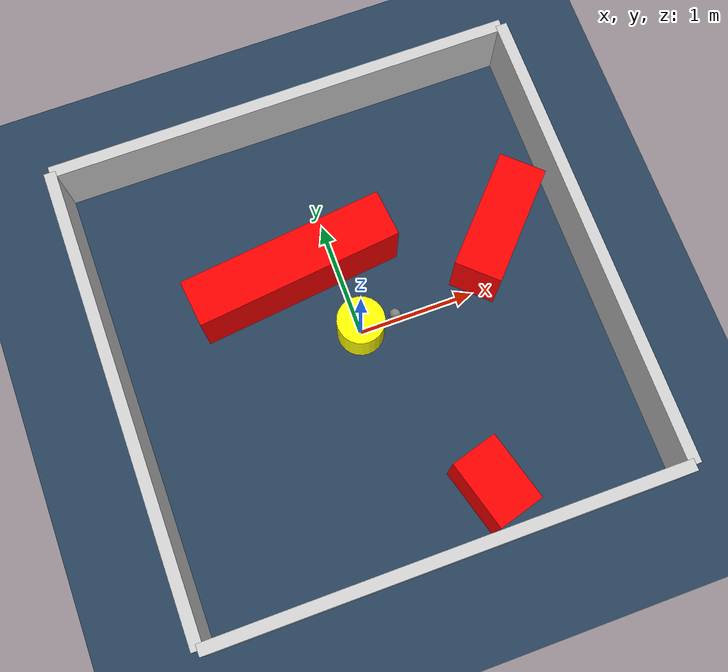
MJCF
<?xml version="1.0" ?>
<mujoco model="generated_environment">
  <option timestep="0.01" integrator="RK4" cone="elliptic"/>
  <default>
    <geom density="1"/>
  </default>
  <asset>
    <texture builtin="gradient" height="3072" rgb1="0.3 0.5 0.7" rgb2="0 0 0" type="skybox" width="512"/>
    <texture builtin="checker" height="300" mark="edge" markrgb="0.8 0.8 0.8" name="groundplane" rgb1="0.2 0.3 0.4" rgb2="0.1 0.2 0.3" type="2d" width="300"/>
    <material name="groundplane" reflectance="0.2" texrepeat="5 5" texture="groundplane" texuniform="true"/>
    <material name="robot" rgba="0.0 1.0 0.0 1"/>
  </asset>
  <worldbody>
    <light dir="0 0 -1" directional="true" pos="0 0 1.5"/>
    <geom condim="4" friction="1.0 0.005 0.001" material="groundplane" name="floor" size="0 0 0.05" type="plane"/>
    <body name="walls">
      <geom name="wall_1" condim="4" pos="-2.0 0.0 0.3" rgba="0.800000011920929 0.800000011920929 0.800000011920929 1.0" size="0.05 2.0 0.3" type="box"/>
      <geom name="wall_2" condim="4" pos="2.0 0.0 0.3" rgba="0.800000011920929 0.800000011920929 0.800000011920929 1.0" size="0.05 2.0 0.3" type="box"/>
      <geom name="wall_3" condim="4" pos="0.0 -2.0 0.3" rgba="0.800000011920929 0.800000011920929 0.800000011920929 1.0" size="2.0 0.05 0.3" type="box"/>
      <geom name="wall_4" condim="4" pos="0.0 2.0 0.3" rgba="0.800000011920929 0.800000011920929 0.800000011920929 1.0" size="2.0 0.05 0.3" type="box"/>
    </body>
    <body name="robot">
      <joint name="joint_x" type="slide" pos="0 0 0" axis="1 0 0"/>
      <joint name="joint_y" type="slide" pos="0 0 0" axis="0 1 0"/>
      <geom name="robot" type="sphere" pos="0.3 0.0 0.2" size="0.05" mass="5." friction="1.0 0.005 0.0001" condim="4" rgba="0.5 0.5 0.5 1.0"/>
      <site name="sensor_ball"/>
    </body>
    <body name="obstacle_movable_1">
      <geom name="obstacle_movable_1" condim="4" pos="0.0 0.0 0.2" euler="0 0 0.0" friction="1.0 0.005 0.001" rgba="1.0 1.0 0.0 1.0" size="0.2 0.2 0.0" type="cylinder" mass="0.1"/>
      <joint type="free"/>
    </body>
    <body name="obstacle_2_static">
      <geom name="obstacle_2_static" condim="4" pos="1.3481811288897432 0.38114234668169744 0.3" euler="0 0 47.35403194391403" friction="1.0 0.005 0.001" rgba="1 0 0 1" size="0.5132651059118819 0.2 0.3" type="box"/>
    </body>
    <body name="obstacle_3_static">
      <geom name="obstacle_3_static" condim="4" pos="-0.3767971061406099 0.632468889813387 0.3" euler="0 0 6.291905860431393" friction="1.0 0.005 0.001" rgba="1 0 0 1" size="0.8781899349688667 0.2 0.3" type="box"/>
    </body>
    <body name="obstacle_4_static">
      <geom name="obstacle_4_static" condim="4" pos="0.5279775135967619 -1.5976537649763554 0.3" euler="0 0 286.06312850746156" friction="1.0 0.005 0.001" rgba="1 0 0 1" size="0.3009596585795157 0.2 0.3" type="box"/>
    </body>
  </worldbody>
  <actuator>
    <motor name="actuator_x" joint="joint_x" gear="1" ctrlrange="-1 1"/>
    <motor name="actuator_y" joint="joint_y" gear="1" ctrlrange="-1 1"/>
  </actuator>
</mujoco>
